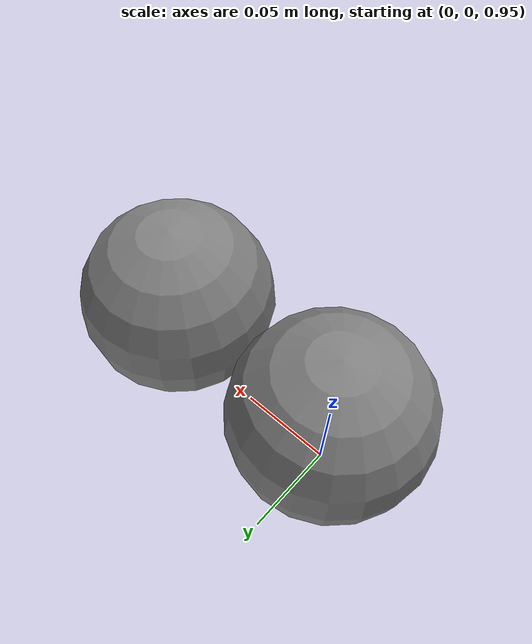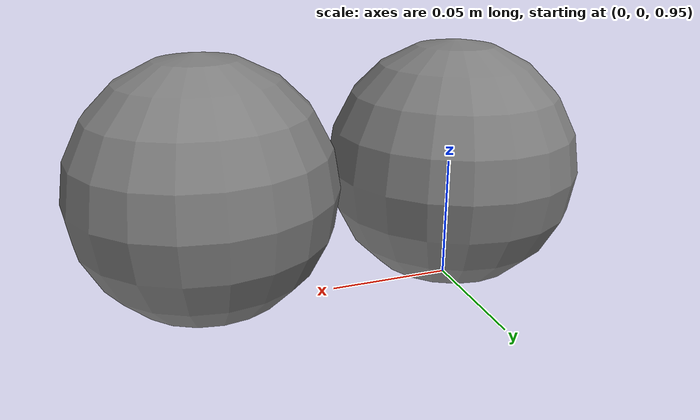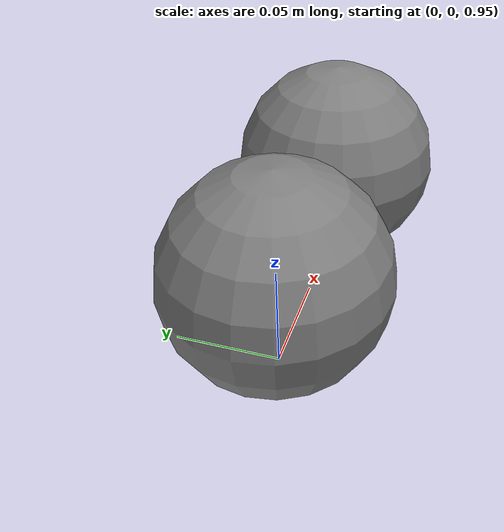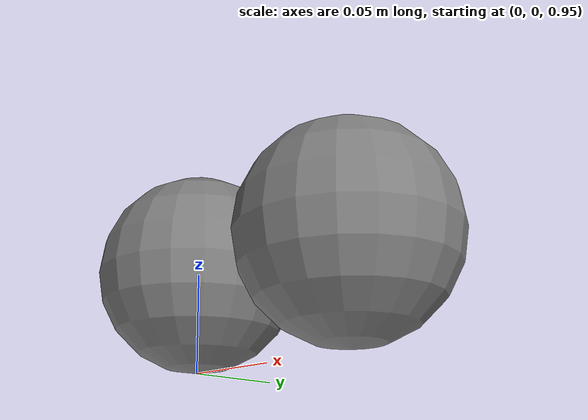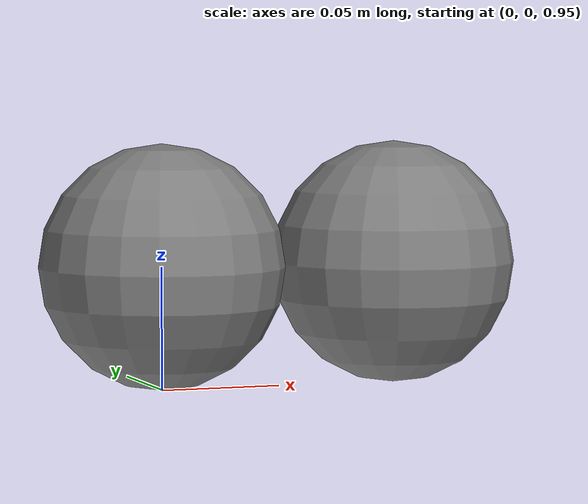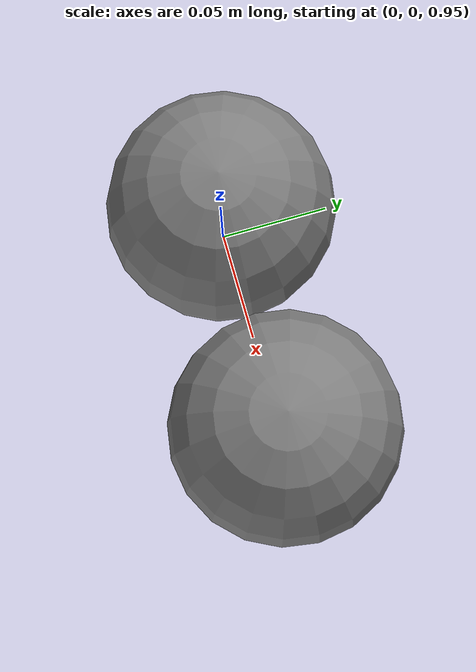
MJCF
<mujoco model="weld_newton">
            <option gravity="0 0 -9.81" timestep="0.001" solver="Newton"/>
            <worldbody>
                <body name="b1" pos="0 0 1">
                    <joint type="free"/>
                    <geom type="sphere" size="0.05" mass="1.0"/>
                </body>
                <body name="b2" pos="0.1 0 1">
                    <joint type="free"/>
                    <geom type="sphere" size="0.05" mass="1.0"/>
                </body>
            </worldbody>
            <equality>
                <weld body1="b1" body2="b2" anchor="0.05 0 0"/>
            </equality>
        </mujoco>
